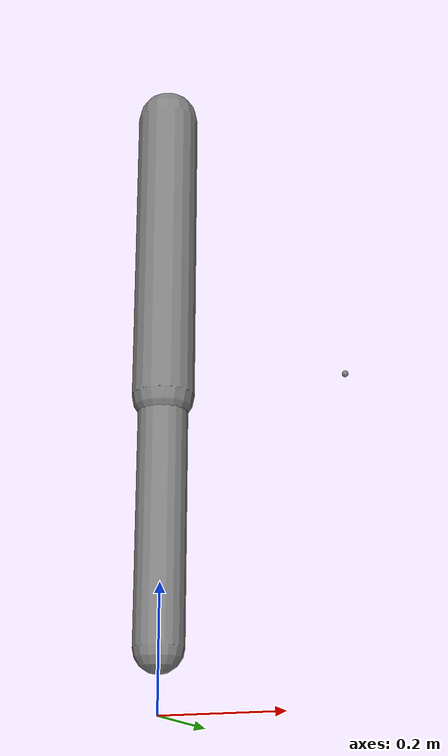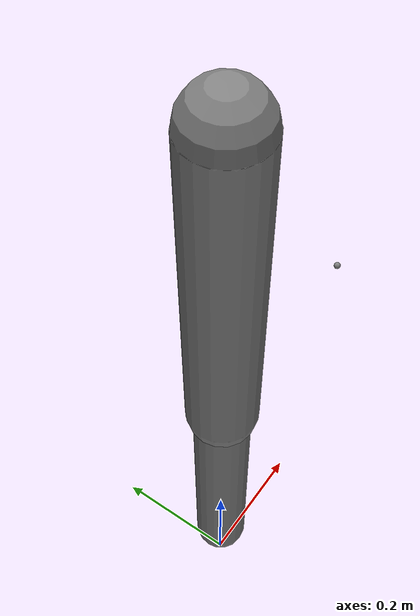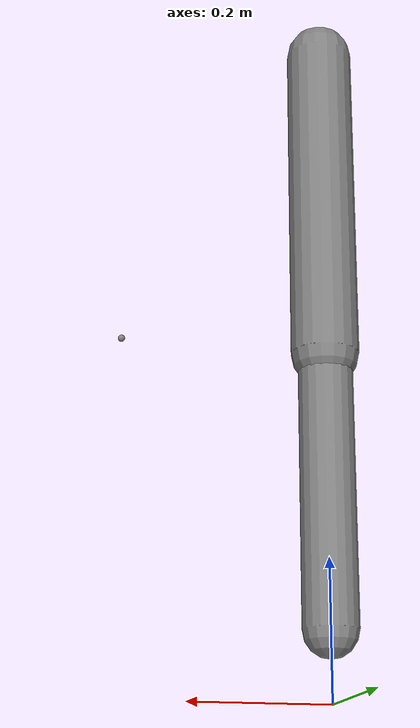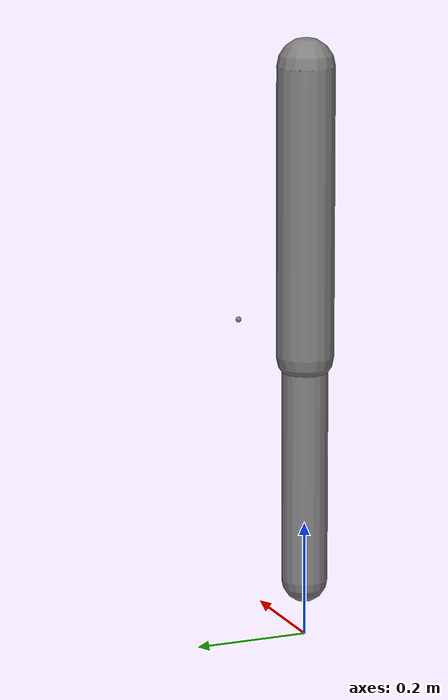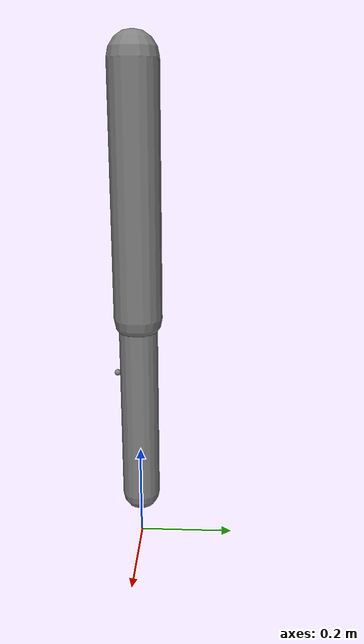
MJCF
<mujoco model="mode_b_mixed_conformance">
            <option gravity="0 0 -9.81" timestep="0.001"/>
            <worldbody>
                <body name="b1" pos="0 0 1">
                    <joint name="j1" type="hinge" axis="0 1 0"/>
                    <geom type="capsule" size="0.05" fromto="0 0 0 0 0 -0.5"/>
                    <site name="ee" pos="0 0 -0.3"/>
                    <body name="b2" pos="0 0 -0.5">
                        <joint name="j2" type="hinge" axis="1 0 0"/>
                        <geom type="capsule" size="0.04" fromto="0 0 0 0 0 -0.4"/>
                        <site name="wrist" pos="0 0 -0.2"/>
                    </body>
                </body>
                <site name="target" pos="0.3 0 0.5"/>
            </worldbody>
            <actuator>
                <general name="cart_mix" site="wrist" refsite="target"
                         gear="1 0 1 0 1 0" ctrlrange="-100 100"/>
            </actuator>
        </mujoco>
